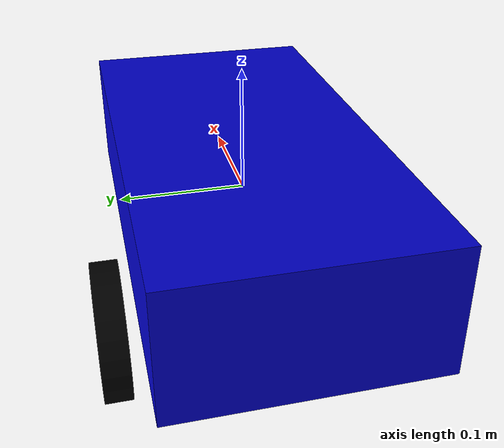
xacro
<?xml version="1.0"?>
<robot name="simple_car" xmlns:xacro="http://www.ros.org/wiki/xacro">

  <material name="blue"><color rgba="0 0 0.8 1"/></material>
  <material name="black"><color rgba="0 0 0 1"/></material>

  <link name="base_link">
    <visual>
      <geometry><box size="0.4 0.2 0.1"/></geometry>
      <material name="blue"/>
    </visual>
    <collision>
      <geometry><box size="0.4 0.2 0.1"/></geometry>
    </collision>
    <inertial>
      <mass value="10"/>
      <inertia ixx="0.1" ixy="0" ixz="0" iyy="0.1" iyz="0" izz="0.1"/>
    </inertial>
  </link>

  <xacro:macro name="wheel" params="prefix reflect">
    <link name="${prefix}_wheel">
      <visual>
        <geometry><cylinder radius="0.05" length="0.02"/></geometry>
        <material name="black"/>
      </visual>
      <collision>
        <geometry><cylinder radius="0.05" length="0.02"/></geometry>
      </collision>
      <inertial>
        <mass value="1"/>
        <inertia ixx="0.01" ixy="0" ixz="0" iyy="0.01" iyz="0" izz="0.01"/>
      </inertial>
    </link>

    <joint name="${prefix}_wheel_joint" type="continuous">
      <parent link="base_link"/>
      <child link="${prefix}_wheel"/>
      <origin xyz="-0.1 ${reflect*0.12} -0.05" rpy="1.5707 0 0"/>
      <axis xyz="0 0 1"/>
    </joint>
  </xacro:macro>

  <xacro:wheel prefix="left" reflect="1"/>
  <xacro:wheel prefix="right" reflect="-1"/>

  <gazebo>
    <plugin name="differential_drive_controller" filename="libgazebo_ros_diff_drive.so">
      <rosDebugLevel>na</rosDebugLevel>
      <publishWheelTF>true</publishWheelTF>
      <robotNamespace>/</robotNamespace>
      <publishTf>1</publishTf>
      <publishWheelJointState>true</publishWheelJointState>
      <alwaysOn>true</alwaysOn>
      <updateRate>100.0</updateRate>
      <leftJoint>left_wheel_joint</leftJoint>
      <rightJoint>right_wheel_joint</rightJoint>
      <wheelSeparation>0.24</wheelSeparation>
      <wheelDiameter>0.1</wheelDiameter>
      <broadcastTF>1</broadcastTF>
      <wheelTorque>30</wheelTorque>
      <wheelAcceleration>1.8</wheelAcceleration>
      <commandTopic>cmd_vel</commandTopic>
      <odometryTopic>odom</odometryTopic>
      <odometryFrame>odom</odometryFrame>
      <robotBaseFrame>base_link</robotBaseFrame>
    </plugin>
  </gazebo>
</robot>
